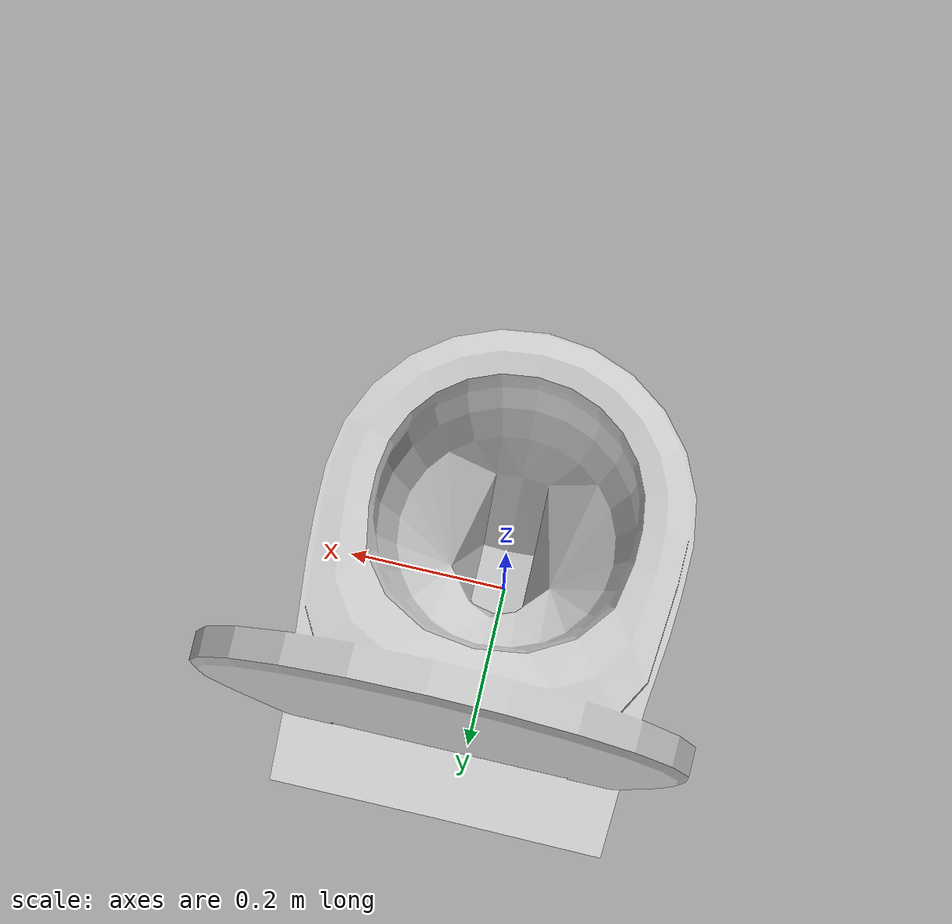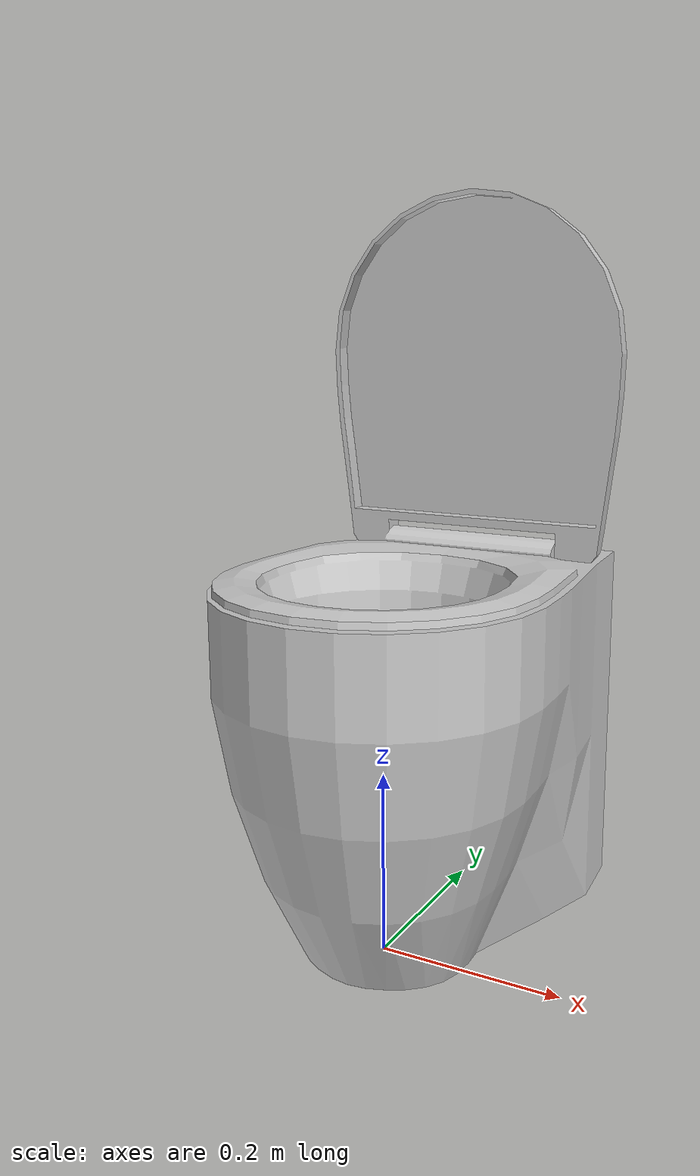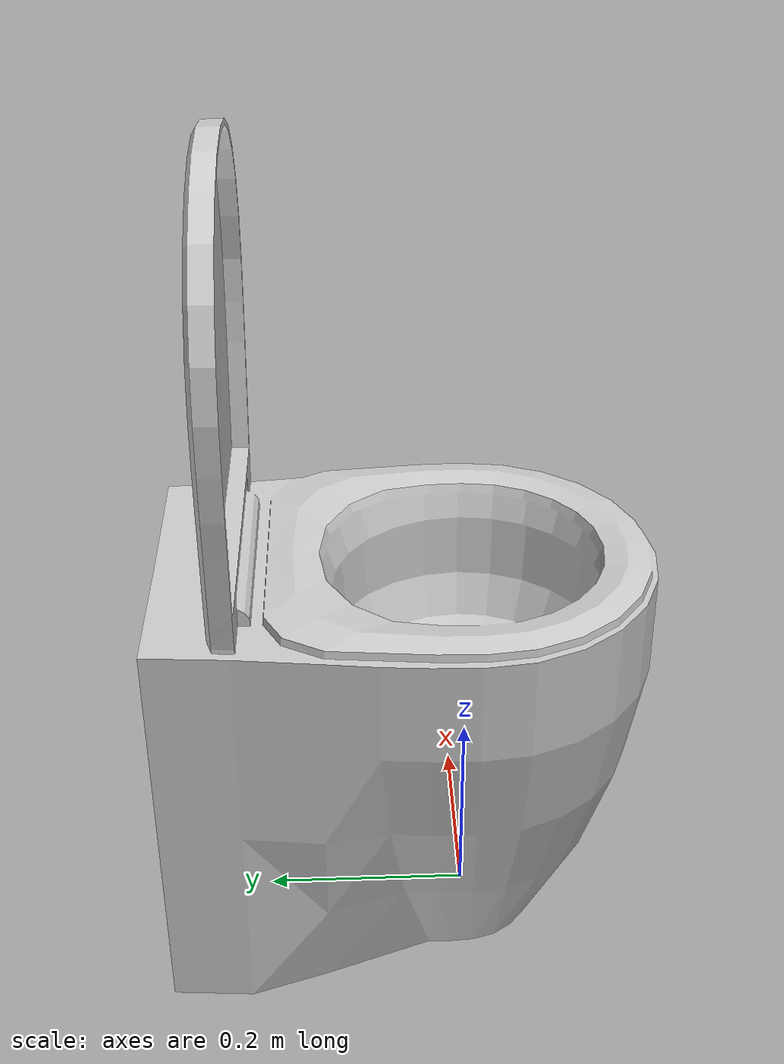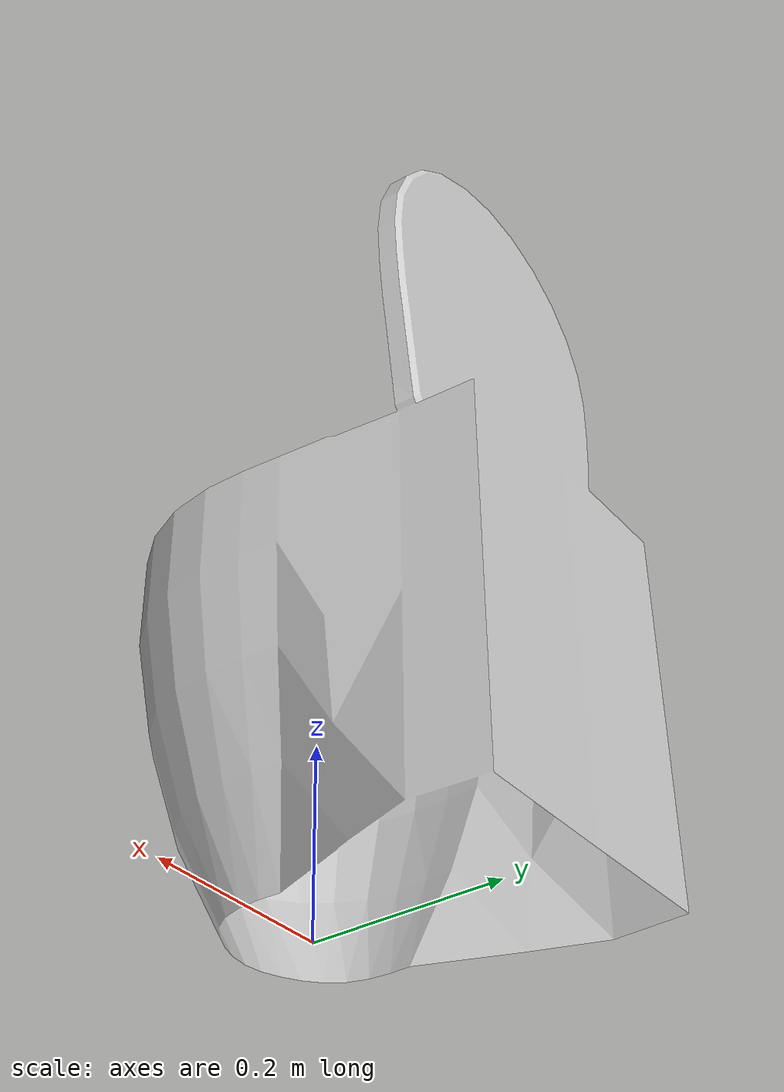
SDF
<?xml version='1.0'?>
<sdf version="1.4">
	<model name="toilet">
		<static>1</static>
		<link name="link">
			<visual name="mesh">
				<geometry>
					<mesh>
						<uri>model://meshes/toilet.dae</uri>
					</mesh>
				</geometry>
			</visual>
			<collision name="collider">
				<pose>0 0.05 0.21 0 0 0</pose>
				<geometry>
					<box>
						<size>0.35 0.46 0.42</size>
					</box>
				</geometry>
			</collision>
		</link>
	</model>
</sdf>
